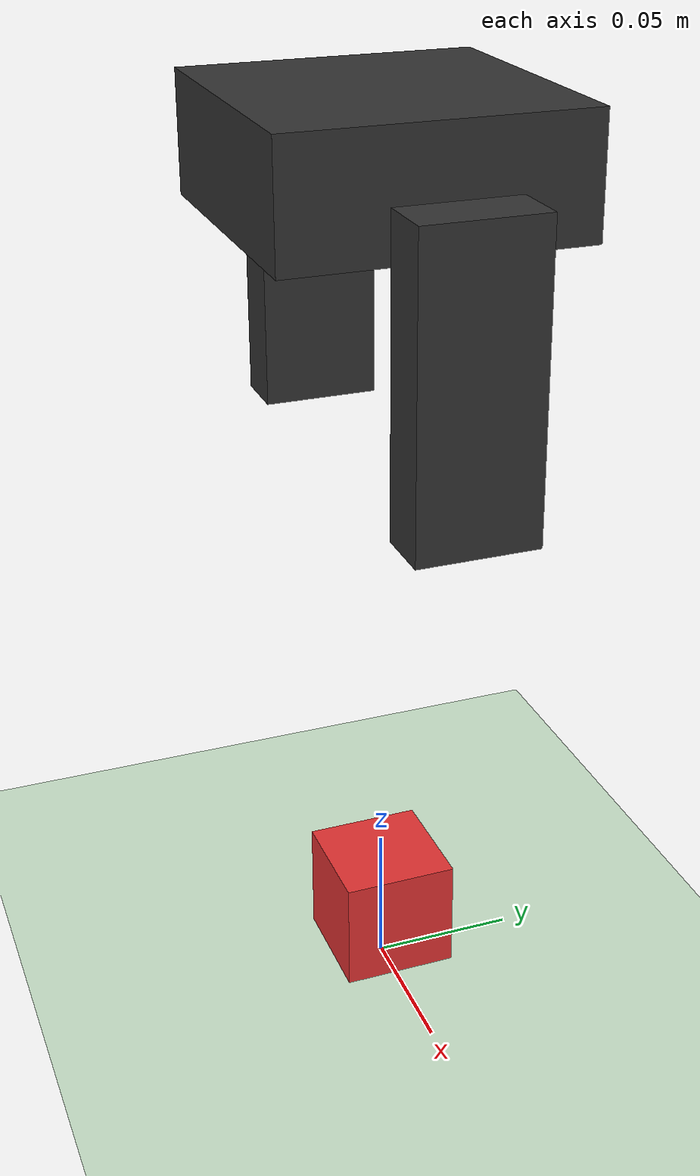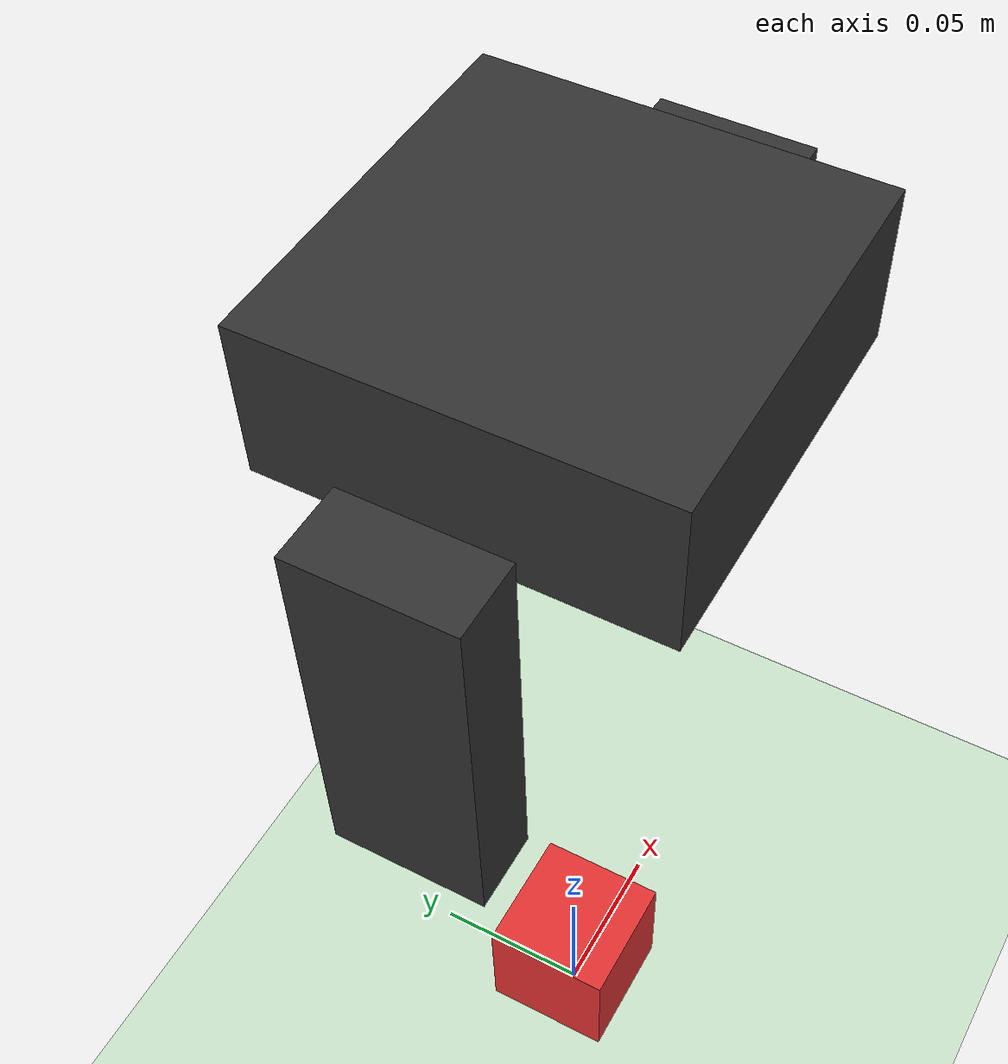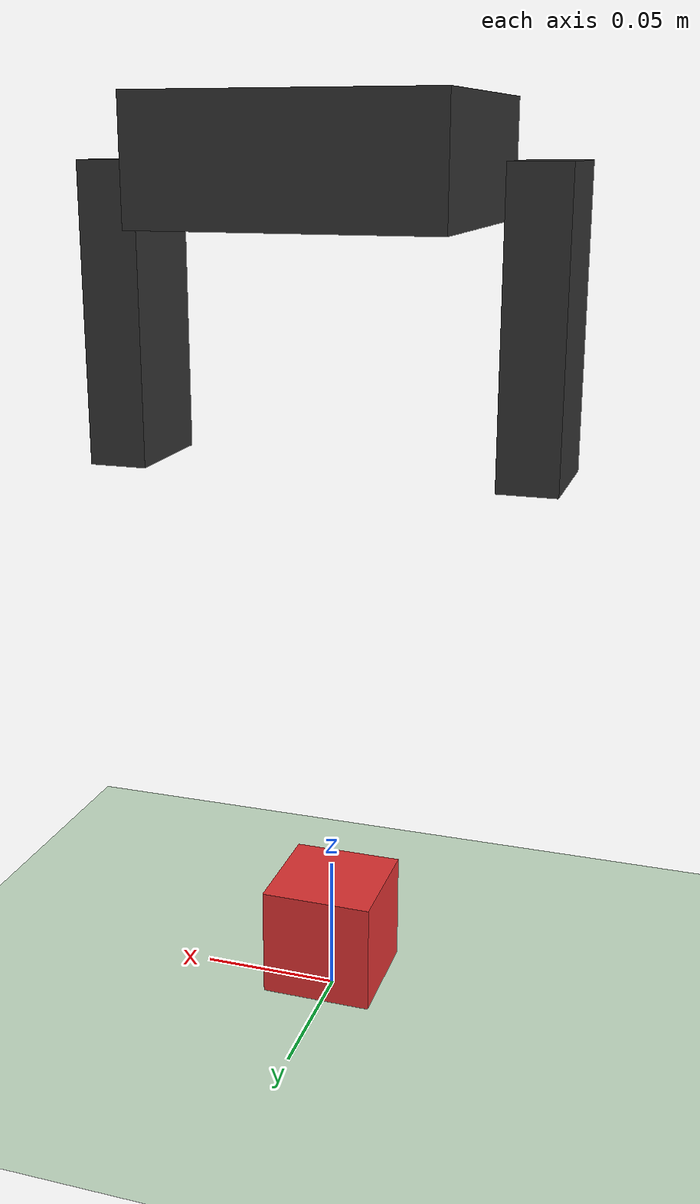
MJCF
<mujoco model="Gripper-test">

  <option timestep="0.002" integrator="implicitfast"/>

  <default>
    <geom solimp="0.95 0.99 0.001" solref="0.005 1" friction="0.8 0.01 0.001"/>
  </default>

  <worldbody>
    <!-- 地面 -->
    <geom name="floor" type="plane" size="1 1 0.1" rgba="0.8 0.9 0.8 1"/>

    <!-- 手：3 自由度 (x,y,z) -->
    <body name="hand" pos="0 0 0.3">
      <joint name="x"    type="slide" axis="1 0 0" range="-0.3 0.3"/>
      <joint name="y"    type="slide" axis="0 1 0" range="-0.3 0.3"/>
      <joint name="lift" type="slide" axis="0 0 1" range="0.0 1"/>

      <geom name="palm" type="box" size="0.05 0.05 0.02" rgba=".2 .2 .2 1"/>

      <body name="right_gripper">
        <joint name="right" type="slide" axis="-1 0 0" range="0 0.1"/>
        <geom name="right_finger" type="box" size="0.01 0.02 0.05" pos=".07 0 -.05" rgba=".2 .2 .2 1"/>
      </body>

      <body name="left_gripper">
        <joint name="left" type="slide" axis="1 0 0" range="0 0.1"/>
        <geom name="left_finger" type="box" size="0.01 0.02 0.05" pos="-.07 0 -.05" rgba=".2 .2 .2 1"/>
      </body>
    </body>

    <!-- 一个积木 -->
    <body name="lego" pos="0.0 0.0 0.025">
      <freejoint/>
      <geom name="lego_geom" type="box" size="0.02 0.02 0.02" mass="0.05" rgba="0.9 0.2 0.2 1"/>
    </body>
  </worldbody>

  <equality>
    <joint joint1="right" joint2="left"/>
  </equality>

  <tendon>
    <fixed name="grasp">
      <joint joint="right" coef="1"/>
      <joint joint="left"  coef="1"/>
    </fixed>
  </tendon>

  <actuator>
    <!-- 手移动 -->
    <position name="x"    joint="x"    kp="800" dampratio="1" ctrlrange="-0.3 0.3"/>
    <position name="y"    joint="y"    kp="1000" dampratio="1" ctrlrange="-0.3 0.3"/>
    <position name="lift" joint="lift" kp="1000" dampratio="1" ctrlrange="0.0 0.6"/>

    <!-- 夹爪 -->
    <position name="grasp" tendon="grasp" kp="1000" dampratio="1" ctrlrange="0 1"/>
  </actuator>
</mujoco>
